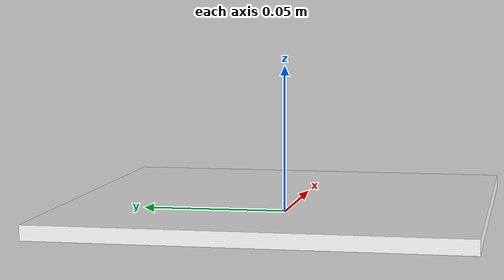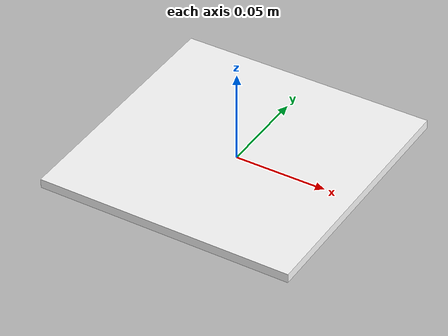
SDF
<?xml version="1.0"?>
<sdf version="1.9">
  <model name="aruco_target">
    <static>true</static>
    <link name="link">
      <collision name="collision">
        <pose>0 0 0.0025 0 0 0</pose>
        <geometry><box><size>0.14 0.14 0.005</size></box></geometry>
      </collision>
      <visual name="visual">
        <pose>0 0 0.0025 0 0 0</pose>
        <geometry><box><size>0.14 0.14 0.005</size></box></geometry>
        <material>
          <ambient>1 1 1 1</ambient>
          <diffuse>1 1 1 1</diffuse>
          <specular>0.05 0.05 0.05 1</specular>
          <pbr>
            <metal>
              <albedo_map>model://aruco_target/materials/textures/aruco_4x4_50_id0.png</albedo_map>
              <roughness>0.9</roughness>
              <metalness>0.0</metalness>
            </metal>
          </pbr>
        </material>
      </visual>
    </link>
  </model>
</sdf>
